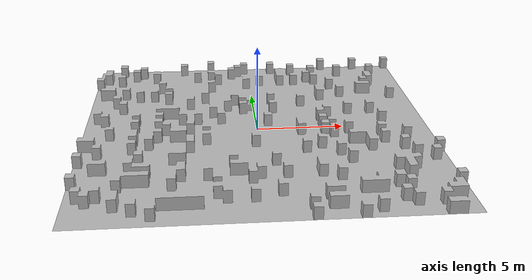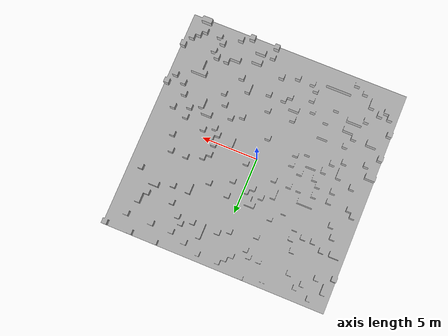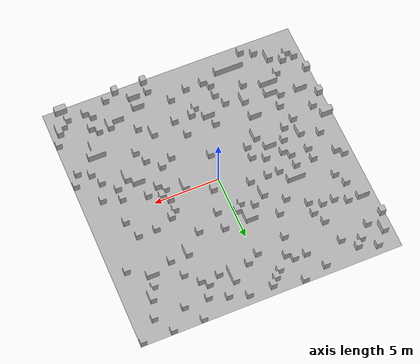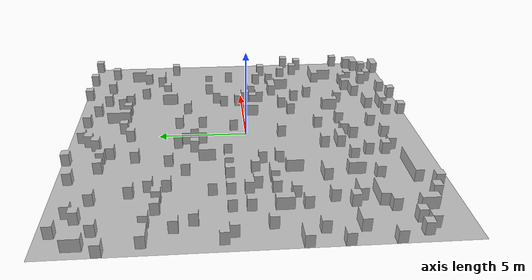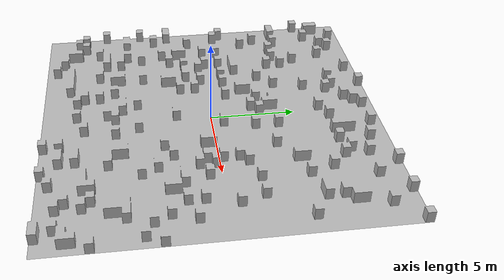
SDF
<?xml version="1.0" ?>

<sdf version='1.6'>
  <world name='default'>
    <include>
      <uri>model://sun</uri>
    </include>

    <include>
      <name>terrain_3</name>
      <uri>model://terrain_3</uri>
      <pose>0 0 0 0 0 0</pose>
    </include>

      <physics type="ode" default="true">
        <max_step_size>0.001</max_step_size>
        <real_time_factor>1000</real_time_factor>
        <max_contacts>1</max_contacts>
        <ode>
          <solver>
            <type>quick</type>
            <iters>10</iters>
          </solver>
        </ode>
      </physics>

      <model name = "camera">
    <static>true</static>
    <pose>0 0 10 0 0 0</pose>

    <link name = "camera_base"/>

    <link name="camera1">
    <pose>12 12 0 0 1.5708 0</pose>
      <sensor name='camera1' type='camera'>
        <camera name="head1">
          <image>
            <width>480</width>
            <height>480</height>
          </image>
          <clip>
            <near>0.001</near>
            <far>300</far>
          </clip>
        </camera>
        <always_on>1</always_on>
        <update_rate>30.0</update_rate>
        <visualize>1</visualize>
        <plugin name="camera1" filename="libgazebo_ros_camera.so">

          <alwaysOn>true</alwaysOn>
          <updateRate>0.0</updateRate>
          <cameraName>camera1</cameraName>
          <imageTopicName>image_raw</imageTopicName>
          <cameraInfoTopicName>camera_info</cameraInfoTopicName>
          <frameName>/camera1</frameName>
          <hackBaseLine>0.07</hackBaseLine>
          <distortionK1>0.0</distortionK1>
          <distortionK2>0.0</distortionK2>
          <distortionK3>0.0</distortionK3>
          <distortionT1>0.0</distortionT1>
          <distortionT2>0.0</distortionT2>
        </plugin>
      </sensor>
      <sensor name='camera1_depth' type='depth'>
        <camera name="camera1">
          <horizontal_fov>2</horizontal_fov>
          <image>
            <width>480</width>
            <height>480</height>
          </image>
          <clip>
            <near>0.02</near>
            <far>300</far>
          </clip>
        </camera>
        <always_on>1</always_on>
        <update_rate>30.0</update_rate>
        <visualize>1</visualize>
        <plugin name="camera1" filename="libgazebo_ros_openni_kinect.so">
          <robotNamespace></robotNamespace>
          <baseline>0.2</baseline>
          <alwaysOn>true</alwaysOn>
          <updateRate>30.0</updateRate>
          <cameraName>camera1</cameraName>
          <imageTopicName>image_raw</imageTopicName>
          <cameraInfoTopicName>camera1_info</cameraInfoTopicName>
          <depthImageTopicName>image_raw</depthImageTopicName>
          <depthImageInfoTopicName>camera1_info</depthImageInfoTopicName>
          <pointCloudTopicName>points</pointCloudTopicName>
          <frameName>/camera1</frameName>
          <pointCloudCutoff>0.04</pointCloudCutoff>
          <pointCloudCutoffMax>15</pointCloudCutoffMax>
          <distortionK1>0.0</distortionK1>
          <distortionK2>0.0</distortionK2>
          <distortionK3>0.0</distortionK3>
          <distortionT1>0.0</distortionT1>
          <distortionT2>0.0</distortionT2>
          <CxPrime>0</CxPrime>
          <Cx>0</Cx>
          <Cy>0</Cy>
          <focalLength>0</focalLength>
          <hackBaseline>0</hackBaseline>
        </plugin>
      </sensor>
    </link>

    <link name="camera2">
      <pose>-12 12 0 0 1.5708 0</pose>
      <sensor name='camera2' type='camera'>
        <camera name="head2">
          <image>
            <width>480</width>
            <height>480</height>
          </image>
          <clip>
            <near>0.001</near>
            <far>300</far>
          </clip>
        </camera>
        <always_on>1</always_on>
        <update_rate>30.0</update_rate>
        <visualize>1</visualize>
        <plugin name="camera2" filename="libgazebo_ros_camera.so">

          <alwaysOn>true</alwaysOn>
          <updateRate>0.0</updateRate>
          <cameraName>camera2</cameraName>
          <imageTopicName>image_raw</imageTopicName>
          <cameraInfoTopicName>camera_info</cameraInfoTopicName>
          <frameName>/camera2</frameName>
          <hackBaseLine>0.07</hackBaseLine>
          <distortionK1>0.0</distortionK1>
          <distortionK2>0.0</distortionK2>
          <distortionK3>0.0</distortionK3>
          <distortionT1>0.0</distortionT1>
          <distortionT2>0.0</distortionT2>
        </plugin>
      </sensor>
      <sensor name='camera2_depth' type='depth'>
        <camera name="camera2">
          <horizontal_fov>2</horizontal_fov>
          <image>
            <width>480</width>
            <height>480</height>
          </image>
          <clip>
            <near>0.02</near>
            <far>300</far>
          </clip>
        </camera>
        <always_on>1</always_on>
        <update_rate>30.0</update_rate>
        <visualize>1</visualize>
        <plugin name="camera2" filename="libgazebo_ros_openni_kinect.so">
          <robotNamespace></robotNamespace>
          <baseline>0.2</baseline>
          <alwaysOn>true</alwaysOn>
          <updateRate>30.0</updateRate>
          <cameraName>camera2</cameraName>
          <imageTopicName>image_raw</imageTopicName>
          <cameraInfoTopicName>camera2_info</cameraInfoTopicName>
          <depthImageTopicName>image_raw</depthImageTopicName>
          <depthImageInfoTopicName>camera2_info</depthImageInfoTopicName>
          <pointCloudTopicName>points</pointCloudTopicName>
          <frameName>/camera2</frameName>
          <pointCloudCutoff>0.04</pointCloudCutoff>
          <pointCloudCutoffMax>15</pointCloudCutoffMax>
          <distortionK1>0.0</distortionK1>
          <distortionK2>0.0</distortionK2>
          <distortionK3>0.0</distortionK3>
          <distortionT1>0.0</distortionT1>
          <distortionT2>0.0</distortionT2>
          <CxPrime>0</CxPrime>
          <Cx>0</Cx>
          <Cy>0</Cy>
          <focalLength>0</focalLength>
          <hackBaseline>0</hackBaseline>
        </plugin>
      </sensor>
    </link>

    <link name="camera3">
      <pose>-12 -12 0 0 1.5708 0</pose>
      <sensor name='camera3' type='camera'>
        <camera name="head3">
          <image>
            <width>480</width>
            <height>480</height>
          </image>
          <clip>
            <near>0.001</near>
            <far>300</far>
          </clip>
        </camera>
        <always_on>1</always_on>
        <update_rate>30.0</update_rate>
        <visualize>1</visualize>
        <plugin name="camera3" filename="libgazebo_ros_camera.so">

          <alwaysOn>true</alwaysOn>
          <updateRate>0.0</updateRate>
          <cameraName>camera3</cameraName>
          <imageTopicName>image_raw</imageTopicName>
          <cameraInfoTopicName>camera_info</cameraInfoTopicName>
          <frameName>/camera3</frameName>
          <hackBaseLine>0.07</hackBaseLine>
          <distortionK1>0.0</distortionK1>
          <distortionK2>0.0</distortionK2>
          <distortionK3>0.0</distortionK3>
          <distortionT1>0.0</distortionT1>
          <distortionT2>0.0</distortionT2>
        </plugin>
      </sensor>
      <sensor name='camera3_depth' type='depth'>
        <camera name="camera3">
          <horizontal_fov>2</horizontal_fov>
          <image>
            <width>480</width>
            <height>480</height>
          </image>
          <clip>
            <near>0.02</near>
            <far>300</far>
          </clip>
        </camera>
        <always_on>1</always_on>
        <update_rate>30.0</update_rate>
        <visualize>1</visualize>
        <plugin name="camera3" filename="libgazebo_ros_openni_kinect.so">
          <robotNamespace></robotNamespace>
          <baseline>0.2</baseline>
          <alwaysOn>true</alwaysOn>
          <updateRate>30.0</updateRate>
          <cameraName>camera3</cameraName>
          <imageTopicName>image_raw</imageTopicName>
          <cameraInfoTopicName>camera3_info</cameraInfoTopicName>
          <depthImageTopicName>image_raw</depthImageTopicName>
          <depthImageInfoTopicName>camera3_info</depthImageInfoTopicName>
          <pointCloudTopicName>points</pointCloudTopicName>
          <frameName>/camera3</frameName>
          <pointCloudCutoff>0.04</pointCloudCutoff>
          <pointCloudCutoffMax>15</pointCloudCutoffMax>
          <distortionK1>0.0</distortionK1>
          <distortionK2>0.0</distortionK2>
          <distortionK3>0.0</distortionK3>
          <distortionT1>0.0</distortionT1>
          <distortionT2>0.0</distortionT2>
          <CxPrime>0</CxPrime>
          <Cx>0</Cx>
          <Cy>0</Cy>
          <focalLength>0</focalLength>
          <hackBaseline>0</hackBaseline>
        </plugin>
      </sensor>
    </link>

    <link name="camera4">
      <pose>12 -12 0 0 1.5708 0</pose>

      <sensor name='camera4' type='camera'>
        <camera name="head4">
          <image>
            <width>480</width>
            <height>480</height>
          </image>
          <clip>
            <near>0.001</near>
            <far>300</far>
          </clip>
        </camera>
        <always_on>1</always_on>
        <update_rate>30.0</update_rate>
        <visualize>1</visualize>
        <plugin name="camera4" filename="libgazebo_ros_camera.so">

          <alwaysOn>true</alwaysOn>
          <updateRate>0.0</updateRate>
          <cameraName>camera4</cameraName>
          <imageTopicName>image_raw</imageTopicName>
          <cameraInfoTopicName>camera_info</cameraInfoTopicName>
          <frameName>/camera4</frameName>
          <hackBaseLine>0.07</hackBaseLine>
          <distortionK1>0.0</distortionK1>
          <distortionK2>0.0</distortionK2>
          <distortionK3>0.0</distortionK3>
          <distortionT1>0.0</distortionT1>
          <distortionT2>0.0</distortionT2>
        </plugin>
      </sensor>
      <sensor name='camera4_depth' type='depth'>
        <camera name="camera4">
          <horizontal_fov>2</horizontal_fov>
          <image>
            <width>480</width>
            <height>480</height>
          </image>
          <clip>
            <near>0.02</near>
            <far>300</far>
          </clip>
        </camera>
        <always_on>1</always_on>
        <update_rate>30.0</update_rate>
        <visualize>1</visualize>
        <plugin name="camera4" filename="libgazebo_ros_openni_kinect.so">
          <robotNamespace></robotNamespace>
          <baseline>0.2</baseline>
          <alwaysOn>true</alwaysOn>
          <updateRate>30.0</updateRate>
          <cameraName>camera4</cameraName>
          <imageTopicName>image_raw</imageTopicName>
          <cameraInfoTopicName>camera4_info</cameraInfoTopicName>
          <depthImageTopicName>image_raw</depthImageTopicName>
          <depthImageInfoTopicName>camera4_info</depthImageInfoTopicName>
          <pointCloudTopicName>points</pointCloudTopicName>
          <frameName>/camera4</frameName>
          <pointCloudCutoff>0.04</pointCloudCutoff>
          <pointCloudCutoffMax>15</pointCloudCutoffMax>
          <distortionK1>0.0</distortionK1>
          <distortionK2>0.0</distortionK2>
          <distortionK3>0.0</distortionK3>
          <distortionT1>0.0</distortionT1>
          <distortionT2>0.0</distortionT2>
          <CxPrime>0</CxPrime>
          <Cx>0</Cx>
          <Cy>0</Cy>
          <focalLength>0</focalLength>
          <hackBaseline>0</hackBaseline>
        </plugin>
      </sensor>
    </link>

    <link name="camera5">
      <pose>0 0 0 0 1.5708 0</pose>

      <sensor name='camera5' type='camera'>
        <camera name="head4">
          <image>
            <width>480</width>
            <height>480</height>
          </image>
          <clip>
            <near>0.001</near>
            <far>300</far>
          </clip>
        </camera>
        <always_on>1</always_on>
        <update_rate>30.0</update_rate>
        <visualize>1</visualize>
        <plugin name="camera5" filename="libgazebo_ros_camera.so">

          <alwaysOn>true</alwaysOn>
          <updateRate>0.0</updateRate>
          <cameraName>camera5</cameraName>
          <imageTopicName>image_raw</imageTopicName>
          <cameraInfoTopicName>camera_info</cameraInfoTopicName>
          <frameName>/camera5</frameName>
          <hackBaseLine>0.07</hackBaseLine>
          <distortionK1>0.0</distortionK1>
          <distortionK2>0.0</distortionK2>
          <distortionK3>0.0</distortionK3>
          <distortionT1>0.0</distortionT1>
          <distortionT2>0.0</distortionT2>
        </plugin>
      </sensor>
      <sensor name='camera5_depth' type='depth'>
        <camera name="camera5">
          <horizontal_fov>2</horizontal_fov>
          <image>
            <width>480</width>
            <height>480</height>
          </image>
          <clip>
            <near>0.02</near>
            <far>300</far>
          </clip>
        </camera>
        <always_on>1</always_on>
        <update_rate>30.0</update_rate>
        <visualize>1</visualize>
        <plugin name="camera5" filename="libgazebo_ros_openni_kinect.so">
          <robotNamespace></robotNamespace>
          <baseline>0.2</baseline>
          <alwaysOn>true</alwaysOn>
          <updateRate>30.0</updateRate>
          <cameraName>camera5</cameraName>
          <imageTopicName>image_raw</imageTopicName>
          <cameraInfoTopicName>camera5_info</cameraInfoTopicName>
          <depthImageTopicName>image_raw</depthImageTopicName>
          <depthImageInfoTopicName>camera5_info</depthImageInfoTopicName>
          <pointCloudTopicName>points</pointCloudTopicName>
          <frameName>/camera5</frameName>
          <pointCloudCutoff>0.04</pointCloudCutoff>
          <pointCloudCutoffMax>15</pointCloudCutoffMax>
          <distortionK1>0.0</distortionK1>
          <distortionK2>0.0</distortionK2>
          <distortionK3>0.0</distortionK3>
          <distortionT1>0.0</distortionT1>
          <distortionT2>0.0</distortionT2>
          <CxPrime>0</CxPrime>
          <Cx>0</Cx>
          <Cy>0</Cy>
          <focalLength>0</focalLength>
          <hackBaseline>0</hackBaseline>
        </plugin>
      </sensor>
    </link>

    <joint name="camera1_joint" type="fixed">
        <pose>12 12 0 0 1.5708 0</pose>
        <parent>camera_base</parent>
        <child>camera1</child>
    </joint>
    <joint name="camera2_joint" type="fixed">
        <pose>-12 12 0 0 1.5708 0</pose>
        <parent>camera_base</parent>
        <child>camera2</child>
    </joint>
    <joint name="camera3_joint" type="fixed">
        <pose>-12 -12 0 0 1.5708 0</pose>
        <parent>camera_base</parent>
        <child>camera3</child>
    </joint>
    <joint name="camera4_joint" type="fixed">
        <pose>12 -12 0 0 1.5708 0</pose>
        <parent>camera_base</parent>
        <child>camera4</child>
    </joint>
    <joint name="camera5_joint" type="fixed">
        <pose>0 0 0 0 1.5708 0</pose>
        <parent>camera_base</parent>
        <child>camera5</child>
    </joint>
    </model>

  </world>
</sdf>

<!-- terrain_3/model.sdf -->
<sdf version="1.5">
  <model name="terrain_3">
    <pose>0 0 0 0 0 0</pose>
    <static>true</static>
    <link name="body">
      <visual name="visual">
        <geometry>
          <mesh><uri>model://terrain_3/media/terrain_3.dae</uri></mesh>
        </geometry>
      </visual>
      <collision name="collision">
        <geometry>
          <mesh><uri>model://terrain_3/media/terrain_3.dae</uri></mesh>
        </geometry>
        <surface>
	      <bounce>
		<restitution_coefficient>0</restitution_coefficient>
		<threshold>1e+06</threshold>
	      </bounce>
	      <contact>
		<collide_without_contact>0</collide_without_contact>
		<collide_without_contact_bitmask>1</collide_without_contact_bitmask>
		<collide_bitmask>1</collide_bitmask>
		<ode>
		  <soft_cfm>0</soft_cfm>
		  <soft_erp>0.2</soft_erp>
		  <kp>1e+6</kp>
		  <kd>1e+3</kd>
		  <max_vel>0</max_vel>
		  <min_depth>0.001</min_depth>
		</ode>
		<bullet>
		  <split_impulse>1</split_impulse>
		  <split_impulse_penetration_threshold>-0.01</split_impulse_penetration_threshold>
		  <soft_cfm>0</soft_cfm>
		  <soft_erp>0.2</soft_erp>
		  <kp>1e+6</kp>
		  <kd>1e+3</kd>
		</bullet>
	      </contact>
	      <soft_contact>
		<dart>
		  <bone_attachment>10</bone_attachment>
		  <stiffness>10</stiffness>
		  <damping>1</damping>
		</dart>
	      </soft_contact>
	      <friction>
		<ode>
		  <mu>1+e100</mu>
		  <mu2>10000</mu2>
		  <fdir1>0 0 1</fdir1>
		  <slip1>0</slip1>
		  <slip2>0</slip2>
		</ode>
		<torsional>
		  <coefficient>1</coefficient>
		  <patch_radius>0</patch_radius>
		  <surface_radius>0</surface_radius>
		  <use_patch_radius>1</use_patch_radius>
		  <ode>
		    <slip>0</slip>
		  </ode>
		</torsional>
	      </friction>
	    </surface>
      </collision>
    </link>
  </model>
</sdf>
